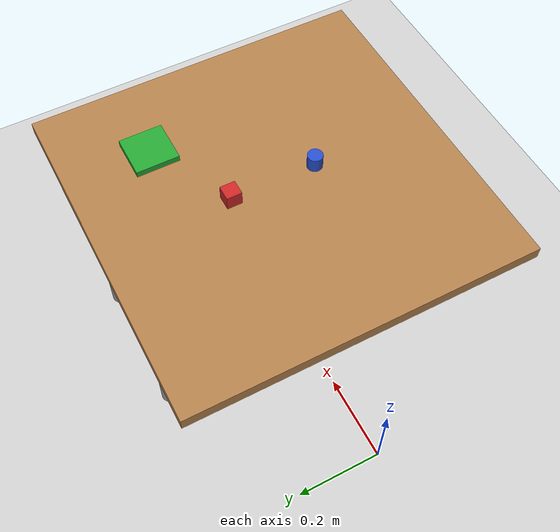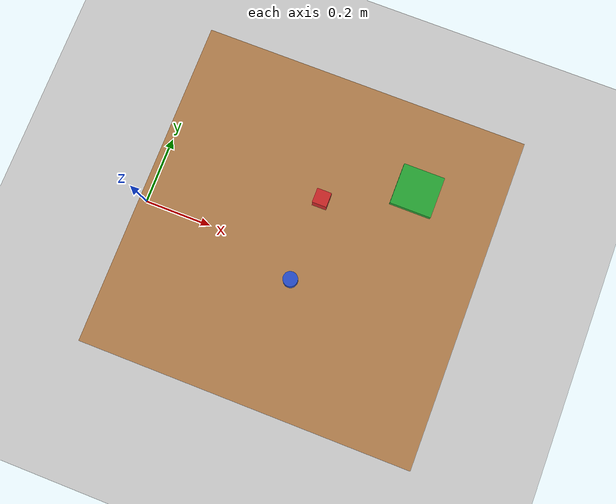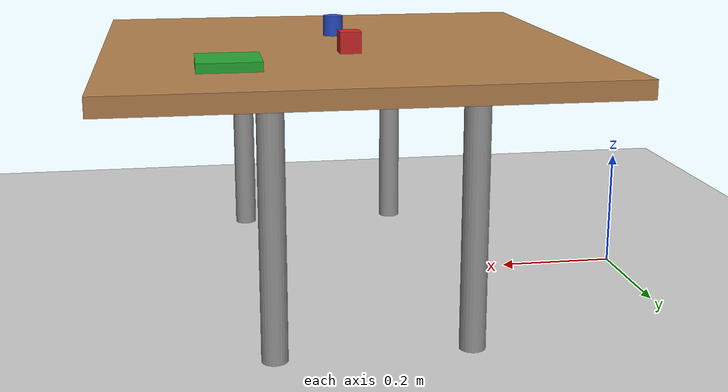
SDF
<?xml version="1.0" ?>
<sdf version="1.6">
  <world name="pick_place_world">
    <!-- Default physics settings -->
    <physics type="ode">
      <max_step_size>0.001</max_step_size>
      <real_time_factor>1</real_time_factor>
      <real_time_update_rate>1000</real_time_update_rate>
      <ode>
        <solver>
          <type>quick</type>
          <iters>50</iters>
          <sor>1.3</sor>
        </solver>
        <constraints>
          <cfm>0.0</cfm>
          <erp>0.2</erp>
          <contact_max_correcting_vel>100.0</contact_max_correcting_vel>
          <contact_surface_layer>0.001</contact_surface_layer>
        </constraints>
      </ode>
    </physics>

    <!-- A global light source -->
    <light type="directional" name="sun">
      <cast_shadows>true</cast_shadows>
      <pose>0 0 10 0 0 0</pose>
      <diffuse>0.8 0.8 0.8 1</diffuse>
      <specular>0.2 0.2 0.2 1</specular>
      <direction>-0.5 0.1 -0.9</direction>
    </light>

    <!-- A ground plane -->
    <model name="ground_plane">
      <static>true</static>
      <link name="link">
        <collision name="collision">
          <geometry>
            <plane>
              <normal>0 0 1</normal>
              <size>100 100</size>
            </plane>
          </geometry>
        </collision>
        <visual name="visual">
          <geometry>
            <plane>
              <normal>0 0 1</normal>
              <size>100 100</size>
            </plane>
          </geometry>
          <material>
            <ambient>0.8 0.8 0.8 1</ambient>
            <diffuse>0.8 0.8 0.8 1</diffuse>
            <specular>0.8 0.8 0.8 1</specular>
          </material>
        </visual>
      </link>
    </model>

    <!-- Ambient light for better visibility -->
    <light type="directional" name="ambient_light">
      <pose>0 0 10 0 0 0</pose>
      <diffuse>0.5 0.5 0.5 1</diffuse>
      <specular>0.1 0.1 0.1 1</specular>
      <direction>0 0 -1</direction>
    </light>

    <!-- Work Table -->
    <model name="work_table">
      <static>true</static>
      <pose>0.5 0 0.4 0 0 0</pose>
      <link name="link">
        <collision name="collision">
          <geometry>
            <box>
              <size>0.8 0.8 0.03</size>
            </box>
          </geometry>
          <surface>
            <friction>
              <ode>
                <mu>0.6</mu>
                <mu2>0.6</mu2>
              </ode>
            </friction>
          </surface>
        </collision>
        <visual name="visual">
          <geometry>
            <box>
              <size>0.8 0.8 0.03</size>
            </box>
          </geometry>
          <material>
            <script>
              <uri>file://media/materials/scripts/gazebo.material</uri>
              <name>Gazebo/Wood</name>
            </script>
          </material>
        </visual>
      </link>
    </model>

    <!-- Table legs -->
    <model name="table_leg1">
      <static>true</static>
      <pose>0.35 0.35 0.2 0 0 0</pose>
      <link name="link">
        <collision name="collision">
          <geometry>
            <cylinder>
              <radius>0.02</radius>
              <length>0.4</length>
            </cylinder>
          </geometry>
        </collision>
        <visual name="visual">
          <geometry>
            <cylinder>
              <radius>0.02</radius>
              <length>0.4</length>
            </cylinder>
          </geometry>
          <material>
            <script>
              <uri>file://media/materials/scripts/gazebo.material</uri>
              <name>Gazebo/Grey</name>
            </script>
          </material>
        </visual>
      </link>
    </model>

    <model name="table_leg2">
      <static>true</static>
      <pose>0.35 -0.35 0.2 0 0 0</pose>
      <link name="link">
        <collision name="collision">
          <geometry>
            <cylinder>
              <radius>0.02</radius>
              <length>0.4</length>
            </cylinder>
          </geometry>
        </collision>
        <visual name="visual">
          <geometry>
            <cylinder>
              <radius>0.02</radius>
              <length>0.4</length>
            </cylinder>
          </geometry>
          <material>
            <script>
              <uri>file://media/materials/scripts/gazebo.material</uri>
              <name>Gazebo/Grey</name>
            </script>
          </material>
        </visual>
      </link>
    </model>

    <model name="table_leg3">
      <static>true</static>
      <pose>0.65 0.35 0.2 0 0 0</pose>
      <link name="link">
        <collision name="collision">
          <geometry>
            <cylinder>
              <radius>0.02</radius>
              <length>0.4</length>
            </cylinder>
          </geometry>
        </collision>
        <visual name="visual">
          <geometry>
            <cylinder>
              <radius>0.02</radius>
              <length>0.4</length>
            </cylinder>
          </geometry>
          <material>
            <script>
              <uri>file://media/materials/scripts/gazebo.material</uri>
              <name>Gazebo/Grey</name>
            </script>
          </material>
        </visual>
      </link>
    </model>

    <model name="table_leg4">
      <static>true</static>
      <pose>0.65 -0.35 0.2 0 0 0</pose>
      <link name="link">
        <collision name="collision">
          <geometry>
            <cylinder>
              <radius>0.02</radius>
              <length>0.4</length>
            </cylinder>
          </geometry>
        </collision>
        <visual name="visual">
          <geometry>
            <cylinder>
              <radius>0.02</radius>
              <length>0.4</length>
            </cylinder>
          </geometry>
          <material>
            <script>
              <uri>file://media/materials/scripts/gazebo.material</uri>
              <name>Gazebo/Grey</name>
            </script>
          </material>
        </visual>
      </link>
    </model>

    <!-- Red cube for picking -->
    <model name="red_cube">
      <pose>0.5 0.1 0.435 0 0 0</pose>
      <link name="link">
        <inertial>
          <mass>0.05</mass>
          <inertia>
            <ixx>0.000010417</ixx>
            <ixy>0</ixy>
            <ixz>0</ixz>
            <iyy>0.000010417</iyy>
            <iyz>0</iyz>
            <izz>0.000010417</izz>
          </inertia>
        </inertial>
        <collision name="collision">
          <geometry>
            <box>
              <size>0.035 0.035 0.035</size>
            </box>
          </geometry>
          <surface>
            <friction>
              <ode>
                <mu>1.0</mu>
                <mu2>1.0</mu2>
                <fdir1>0 0 0</fdir1>
                <slip1>0</slip1>
                <slip2>0</slip2>
              </ode>
            </friction>
            <contact>
              <ode>
                <kp>1000000.0</kp>
                <kd>100.0</kd>
                <max_vel>1.0</max_vel>
                <min_depth>0.001</min_depth>
              </ode>
            </contact>
          </surface>
        </collision>
        <visual name="visual">
          <geometry>
            <box>
              <size>0.035 0.035 0.035</size>
            </box>
          </geometry>
          <material>
            <script>
              <uri>file://media/materials/scripts/gazebo.material</uri>
              <name>Gazebo/Red</name>
            </script>
          </material>
        </visual>
      </link>
    </model>

    <!-- Blue cylinder for picking -->
    <model name="blue_cylinder">
      <pose>0.5 -0.1 0.435 0 0 0</pose>
      <link name="link">
        <inertial>
          <mass>0.05</mass>
          <inertia>
            <ixx>0.000010417</ixx>
            <ixy>0</ixy>
            <ixz>0</ixz>
            <iyy>0.000010417</iyy>
            <iyz>0</iyz>
            <izz>0.000010417</izz>
          </inertia>
        </inertial>
        <collision name="collision">
          <geometry>
            <cylinder>
              <radius>0.0175</radius>
              <length>0.035</length>
            </cylinder>
          </geometry>
          <surface>
            <friction>
              <ode>
                <mu>1.0</mu>
                <mu2>1.0</mu2>
                <fdir1>0 0 0</fdir1>
                <slip1>0</slip1>
                <slip2>0</slip2>
              </ode>
            </friction>
            <contact>
              <ode>
                <kp>1000000.0</kp>
                <kd>100.0</kd>
                <max_vel>1.0</max_vel>
                <min_depth>0.001</min_depth>
              </ode>
            </contact>
          </surface>
        </collision>
        <visual name="visual">
          <geometry>
            <cylinder>
              <radius>0.0175</radius>
              <length>0.035</length>
            </cylinder>
          </geometry>
          <material>
            <script>
              <uri>file://media/materials/scripts/gazebo.material</uri>
              <name>Gazebo/Blue</name>
            </script>
          </material>
        </visual>
      </link>
    </model>

    <!-- Destination box for placing objects -->
    <model name="destination_box">
      <static>true</static>
      <pose>0.7 0.2 0.42 0 0 0</pose>
      <link name="link">
        <collision name="collision">
          <geometry>
            <box>
              <size>0.1 0.1 0.02</size>
            </box>
          </geometry>
        </collision>
        <visual name="visual">
          <geometry>
            <box>
              <size>0.1 0.1 0.02</size>
            </box>
          </geometry>
          <material>
            <script>
              <uri>file://media/materials/scripts/gazebo.material</uri>
              <name>Gazebo/Green</name>
            </script>
          </material>
        </visual>
      </link>
    </model>
    <!-- UR3 Robot will be spawned separately -->

    <!-- Add a fixed joint between the robot and the world -->
    <plugin filename="gz-sim-joint-state-publisher-system"
            name="gz::sim::systems::JointStatePublisher">
    </plugin>

    <plugin filename="gz-sim-pose-publisher-system"
            name="gz::sim::systems::PosePublisher">
    </plugin>

    <plugin filename="gz-sim-physics-system"
            name="gz::sim::systems::Physics">
    </plugin>

    <plugin filename="gz-sim-user-commands-system"
            name="gz::sim::systems::UserCommands">
    </plugin>

    <plugin filename="gz-sim-scene-broadcaster-system"
            name="gz::sim::systems::SceneBroadcaster">
    </plugin>
  </world>
</sdf>
